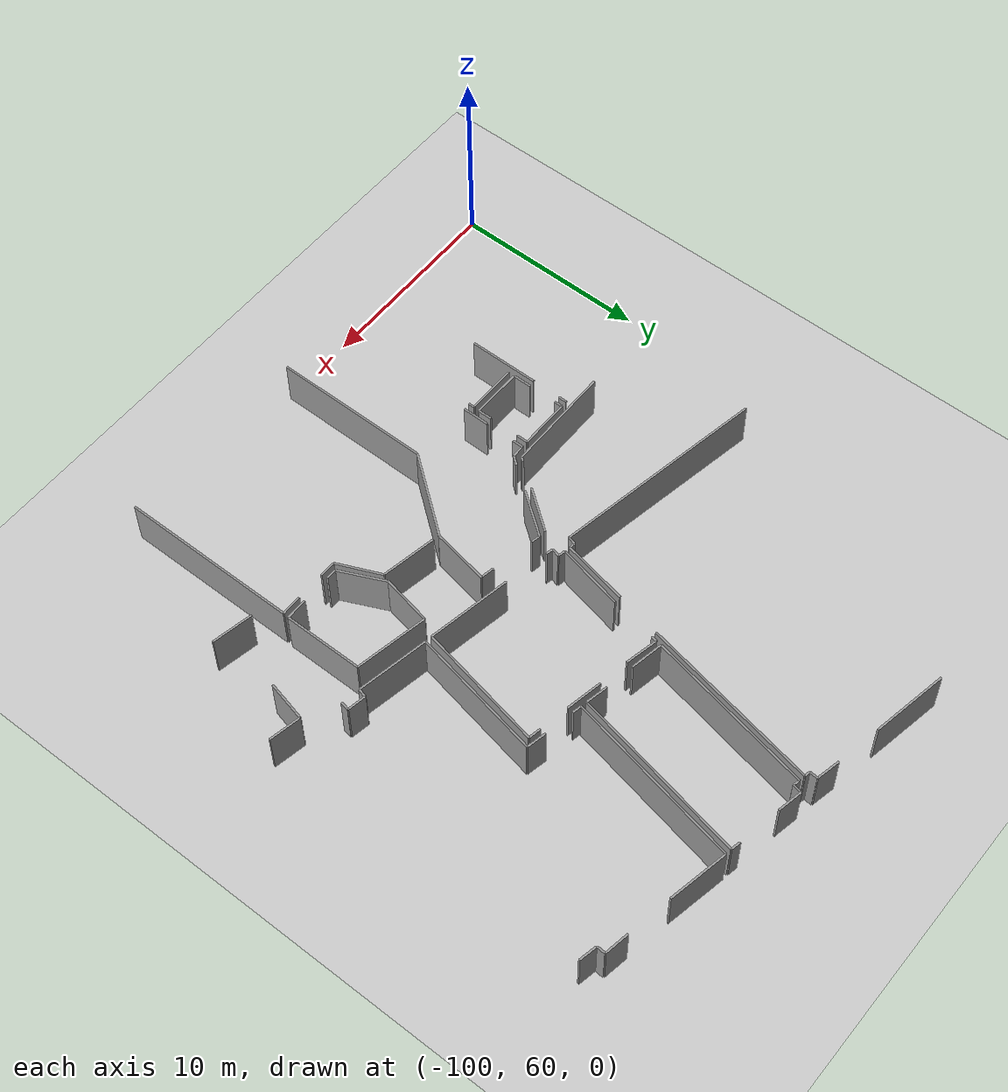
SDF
<sdf version="1.6">
 <world name="default">
  <model name="ground_plane">
   <static>1</static>
   <link name="link">
    <collision name="collision">
     <geometry><plane><normal>0 0 1</normal><size>100 100</size></plane></geometry>
     <surface><friction><ode><mu>100</mu><mu2>50</mu2></ode></friction></surface>
    </collision>
    <visual name="visual">
     <cast_shadows>0</cast_shadows>
     <geometry><plane><normal>0 0 1</normal><size>100 100</size></plane></geometry>
     <material>
      <script><uri>file://media/materials/scripts/gazebo.material</uri><name>Gazebo/Grey</name></script>
     </material>
    </visual>
   </link>
  </model>
  <model name="0510045922_A-40">
   <static>1</static>
   <link name="Wall_51">
    <collision name="Wall_51_Collision">
     <geometry><box><size>3.91748504924 0.1 2.5</size></box></geometry>
     <pose>1.95874252462 0 1.25 0 0 0</pose>
    </collision>
    <visual name="Wall_51_Visual">
     <pose>1.95874252462 0 1.25 0 0 0</pose>
     <geometry><box><size>3.91748504924 0.1 2.5</size></box></geometry>
     <material>
      <script><uri>file://media/materials/scripts/gazebo.material</uri><name>Gazebo/Grey</name></script>
      <ambient>1 1 1 1</ambient>
     </material>
    </visual>
    <pose>42.989438902 -7.71237211667 0 0 0 -0.190346074917</pose>
   </link>
   <link name="Wall_52">
    <collision name="Wall_52_Collision">
     <geometry><box><size>1.2144086014 0.1 2.5</size></box></geometry>
     <pose>0.607204300698 0 1.25 0 0 0</pose>
    </collision>
    <visual name="Wall_52_Visual">
     <pose>0.607204300698 0 1.25 0 0 0</pose>
     <geometry><box><size>1.2144086014 0.1 2.5</size></box></geometry>
     <material>
      <script><uri>file://media/materials/scripts/gazebo.material</uri><name>Gazebo/Grey</name></script>
      <ambient>1 1 1 1</ambient>
     </material>
    </visual>
    <pose>49.1306348097 -8.90700895978 0 0 0 -0.217715462542</pose>
   </link>
   <link name="Wall_53">
    <collision name="Wall_53_Collision">
     <geometry><box><size>0.423572146596 0.1 2.5</size></box></geometry>
     <pose>0.211786073298 0 1.25 0 0 0</pose>
    </collision>
    <visual name="Wall_53_Visual">
     <pose>0.211786073298 0 1.25 0 0 0</pose>
     <geometry><box><size>0.423572146596 0.1 2.5</size></box></geometry>
     <material>
      <script><uri>file://media/materials/scripts/gazebo.material</uri><name>Gazebo/Grey</name></script>
      <ambient>1 1 1 1</ambient>
     </material>
    </visual>
    <pose>50.316375421 -9.16932070916 0 0 0 -1.63504931029</pose>
   </link>
   <link name="Wall_54">
    <collision name="Wall_54_Collision">
     <geometry><box><size>0.291605153644 0.1 2.5</size></box></geometry>
     <pose>0.145802576822 0 1.25 0 0 0</pose>
    </collision>
    <visual name="Wall_54_Visual">
     <pose>0.145802576822 0 1.25 0 0 0</pose>
     <geometry><box><size>0.291605153644 0.1 2.5</size></box></geometry>
     <material>
      <script><uri>file://media/materials/scripts/gazebo.material</uri><name>Gazebo/Grey</name></script>
      <ambient>1 1 1 1</ambient>
     </material>
    </visual>
    <pose>50.2891783694 -9.59201880918 0 0 0 -0.214319914014</pose>
   </link>
   <link name="Wall_55">
    <collision name="Wall_55_Collision">
     <geometry><box><size>9.2602296968 0.1 2.5</size></box></geometry>
     <pose>4.6301148484 0 1.25 0 0 0</pose>
    </collision>
    <visual name="Wall_55_Visual">
     <pose>4.6301148484 0 1.25 0 0 0</pose>
     <geometry><box><size>9.2602296968 0.1 2.5</size></box></geometry>
     <material>
      <script><uri>file://media/materials/scripts/gazebo.material</uri><name>Gazebo/Grey</name></script>
      <ambient>1 1 1 1</ambient>
     </material>
    </visual>
    <pose>50.5741119654 -9.6540382538 0 0 0 -1.75793158499</pose>
   </link>
   <link name="Wall_56">
    <collision name="Wall_56_Collision">
     <geometry><box><size>3.40390601522 0.1 2.5</size></box></geometry>
     <pose>1.70195300761 0 1.25 0 0 0</pose>
    </collision>
    <visual name="Wall_56_Visual">
     <pose>1.70195300761 0 1.25 0 0 0</pose>
     <geometry><box><size>3.40390601522 0.1 2.5</size></box></geometry>
     <material>
      <script><uri>file://media/materials/scripts/gazebo.material</uri><name>Gazebo/Grey</name></script>
      <ambient>1 1 1 1</ambient>
     </material>
    </visual>
    <pose>48.380555379 -21.0806125691 0 0 0 -1.7661855922</pose>
   </link>
   <link name="Wall_57">
    <collision name="Wall_57_Collision">
     <geometry><box><size>0.297248924413 0.1 2.5</size></box></geometry>
     <pose>0.148624462206 0 1.25 0 0 0</pose>
    </collision>
    <visual name="Wall_57_Visual">
     <pose>0.148624462206 0 1.25 0 0 0</pose>
     <geometry><box><size>0.297248924413 0.1 2.5</size></box></geometry>
     <material>
      <script><uri>file://media/materials/scripts/gazebo.material</uri><name>Gazebo/Grey</name></script>
      <ambient>1 1 1 1</ambient>
     </material>
    </visual>
    <pose>47.7196924446 -24.4197496346 0 0 0 3.00779797338</pose>
   </link>
   <link name="Wall_58">
    <collision name="Wall_58_Collision">
     <geometry><box><size>0.412196636696 0.1 2.5</size></box></geometry>
     <pose>0.206098318348 0 1.25 0 0 0</pose>
    </collision>
    <visual name="Wall_58_Visual">
     <pose>0.206098318348 0 1.25 0 0 0</pose>
     <geometry><box><size>0.412196636696 0.1 2.5</size></box></geometry>
     <material>
      <script><uri>file://media/materials/scripts/gazebo.material</uri><name>Gazebo/Grey</name></script>
      <ambient>1 1 1 1</ambient>
     </material>
    </visual>
    <pose>47.4251000826 -24.3800978585 0 0 0 -1.82639379509</pose>
   </link>
   <link name="Wall_59">
    <collision name="Wall_59_Collision">
     <geometry><box><size>11.0264823709 0.1 2.5</size></box></geometry>
     <pose>5.51324118547 0 1.25 0 0 0</pose>
    </collision>
    <visual name="Wall_59_Visual">
     <pose>5.51324118547 0 1.25 0 0 0</pose>
     <geometry><box><size>11.0264823709 0.1 2.5</size></box></geometry>
     <material>
      <script><uri>file://media/materials/scripts/gazebo.material</uri><name>Gazebo/Grey</name></script>
      <ambient>1 1 1 1</ambient>
     </material>
    </visual>
    <pose>47.3208870814 -24.7789032217 0 0 0 2.95229391806</pose>
   </link>
   <link name="Wall_62">
    <collision name="Wall_62_Collision">
     <geometry><box><size>3.4575962859 0.1 2.5</size></box></geometry>
     <pose>1.72879814295 0 1.25 0 0 0</pose>
    </collision>
    <visual name="Wall_62_Visual">
     <pose>1.72879814295 0 1.25 0 0 0</pose>
     <geometry><box><size>3.4575962859 0.1 2.5</size></box></geometry>
     <material>
      <script><uri>file://media/materials/scripts/gazebo.material</uri><name>Gazebo/Grey</name></script>
      <ambient>1 1 1 1</ambient>
     </material>
    </visual>
    <pose>48.0033551503 -24.4769396963 0 0 0 1.36002132428</pose>
   </link>
   <link name="Wall_63">
    <collision name="Wall_63_Collision">
     <geometry><box><size>0.288522655639 0.1 2.5</size></box></geometry>
     <pose>0.144261327819 0 1.25 0 0 0</pose>
    </collision>
    <visual name="Wall_63_Visual">
     <pose>0.144261327819 0 1.25 0 0 0</pose>
     <geometry><box><size>0.288522655639 0.1 2.5</size></box></geometry>
     <material>
      <script><uri>file://media/materials/scripts/gazebo.material</uri><name>Gazebo/Grey</name></script>
      <ambient>1 1 1 1</ambient>
     </material>
    </visual>
    <pose>49.1415644659 -18.7670839423 0 0 0 1.37305522446</pose>
   </link>
   <link name="Wall_64">
    <collision name="Wall_64_Collision">
     <geometry><box><size>1.6994669576 0.1 2.5</size></box></geometry>
     <pose>0.849733478799 0 1.25 0 0 0</pose>
    </collision>
    <visual name="Wall_64_Visual">
     <pose>0.849733478799 0 1.25 0 0 0</pose>
     <geometry><box><size>1.6994669576 0.1 2.5</size></box></geometry>
     <material>
      <script><uri>file://media/materials/scripts/gazebo.material</uri><name>Gazebo/Grey</name></script>
      <ambient>1 1 1 1</ambient>
     </material>
    </visual>
    <pose>49.1982461714 -18.4841837707 0 0 0 -0.21998296293</pose>
   </link>
   <link name="Wall_65">
    <collision name="Wall_65_Collision">
     <geometry><box><size>1.86109094837 0.1 2.5</size></box></geometry>
     <pose>0.930545474187 0 1.25 0 0 0</pose>
    </collision>
    <visual name="Wall_65_Visual">
     <pose>0.930545474187 0 1.25 0 0 0</pose>
     <geometry><box><size>1.86109094837 0.1 2.5</size></box></geometry>
     <material>
      <script><uri>file://media/materials/scripts/gazebo.material</uri><name>Gazebo/Grey</name></script>
      <ambient>1 1 1 1</ambient>
     </material>
    </visual>
    <pose>52.3978394866 -19.1181038317 0 0 0 -0.19795803468</pose>
   </link>
   <link name="Wall_66">
    <collision name="Wall_66_Collision">
     <geometry><box><size>0.62810148145 0.1 2.5</size></box></geometry>
     <pose>0.314050740725 0 1.25 0 0 0</pose>
    </collision>
    <visual name="Wall_66_Visual">
     <pose>0.314050740725 0 1.25 0 0 0</pose>
     <geometry><box><size>0.62810148145 0.1 2.5</size></box></geometry>
     <material>
      <script><uri>file://media/materials/scripts/gazebo.material</uri><name>Gazebo/Grey</name></script>
      <ambient>1 1 1 1</ambient>
     </material>
    </visual>
    <pose>55.7677320963 -19.7764249857 0 0 0 -0.191363886965</pose>
   </link>
   <link name="Wall_67">
    <collision name="Wall_67_Collision">
     <geometry><box><size>6.56181159559 0.1 2.5</size></box></geometry>
     <pose>3.2809057978 0 1.25 0 0 0</pose>
    </collision>
    <visual name="Wall_67_Visual">
     <pose>3.2809057978 0 1.25 0 0 0</pose>
     <geometry><box><size>6.56181159559 0.1 2.5</size></box></geometry>
     <material>
      <script><uri>file://media/materials/scripts/gazebo.material</uri><name>Gazebo/Grey</name></script>
      <ambient>1 1 1 1</ambient>
     </material>
    </visual>
    <pose>56.3843680498 -19.89588867 0 0 0 -1.76227398683</pose>
   </link>
   <link name="Wall_68">
    <collision name="Wall_68_Collision">
     <geometry><box><size>4.31653995928 0.1 2.5</size></box></geometry>
     <pose>2.15826997964 0 1.25 0 0 0</pose>
    </collision>
    <visual name="Wall_68_Visual">
     <pose>2.15826997964 0 1.25 0 0 0</pose>
     <geometry><box><size>4.31653995928 0.1 2.5</size></box></geometry>
     <material>
      <script><uri>file://media/materials/scripts/gazebo.material</uri><name>Gazebo/Grey</name></script>
      <ambient>1 1 1 1</ambient>
     </material>
    </visual>
    <pose>55.1355912817 -26.3377772129 0 0 0 2.95418648301</pose>
   </link>
   <link name="Wall_69">
    <collision name="Wall_69_Collision">
     <geometry><box><size>0.380883923465 0.1 2.5</size></box></geometry>
     <pose>0.190441961732 0 1.25 0 0 0</pose>
    </collision>
    <visual name="Wall_69_Visual">
     <pose>0.190441961732 0 1.25 0 0 0</pose>
     <geometry><box><size>0.380883923465 0.1 2.5</size></box></geometry>
     <material>
      <script><uri>file://media/materials/scripts/gazebo.material</uri><name>Gazebo/Grey</name></script>
      <ambient>1 1 1 1</ambient>
     </material>
    </visual>
    <pose>48.6327000064 -25.0498570248 0 0 0 2.90859140408</pose>
   </link>
   <link name="Wall_70">
    <collision name="Wall_70_Collision">
     <geometry><box><size>0.41940803448 0.1 2.5</size></box></geometry>
     <pose>0.20970401724 0 1.25 0 0 0</pose>
    </collision>
    <visual name="Wall_70_Visual">
     <pose>0.20970401724 0 1.25 0 0 0</pose>
     <geometry><box><size>0.41940803448 0.1 2.5</size></box></geometry>
     <material>
      <script><uri>file://media/materials/scripts/gazebo.material</uri><name>Gazebo/Grey</name></script>
      <ambient>1 1 1 1</ambient>
     </material>
    </visual>
    <pose>48.2621084069 -24.9619114189 0 0 0 1.28259023196</pose>
   </link>
   <link name="Wall_71">
    <collision name="Wall_71_Collision">
     <geometry><box><size>0.386939231184 0.1 2.5</size></box></geometry>
     <pose>0.193469615592 0 1.25 0 0 0</pose>
    </collision>
    <visual name="Wall_71_Visual">
     <pose>0.193469615592 0 1.25 0 0 0</pose>
     <geometry><box><size>0.386939231184 0.1 2.5</size></box></geometry>
     <material>
      <script><uri>file://media/materials/scripts/gazebo.material</uri><name>Gazebo/Grey</name></script>
      <ambient>1 1 1 1</ambient>
     </material>
    </visual>
    <pose>48.3813179132 -24.5598017411 0 0 0 2.92577371781</pose>
   </link>
   <link name="Wall_72">
    <collision name="Wall_72_Collision">
     <geometry><box><size>8.65931794927 0.1 2.5</size></box></geometry>
     <pose>4.32965897464 0 1.25 0 0 0</pose>
    </collision>
    <visual name="Wall_72_Visual">
     <pose>4.32965897464 0 1.25 0 0 0</pose>
     <geometry><box><size>8.65931794927 0.1 2.5</size></box></geometry>
     <material>
      <script><uri>file://media/materials/scripts/gazebo.material</uri><name>Gazebo/Grey</name></script>
      <ambient>1 1 1 1</ambient>
     </material>
    </visual>
    <pose>49.2269682913 -18.1982334625 0 0 0 1.37819605115</pose>
   </link>
   <link name="Wall_73">
    <collision name="Wall_73_Collision">
     <geometry><box><size>0.344508040493 0.1 2.5</size></box></geometry>
     <pose>0.172254020247 0 1.25 0 0 0</pose>
    </collision>
    <visual name="Wall_73_Visual">
     <pose>0.172254020247 0 1.25 0 0 0</pose>
     <geometry><box><size>0.344508040493 0.1 2.5</size></box></geometry>
     <material>
      <script><uri>file://media/materials/scripts/gazebo.material</uri><name>Gazebo/Grey</name></script>
      <ambient>1 1 1 1</ambient>
     </material>
    </visual>
    <pose>50.8844633666 -9.69902776895 0 0 0 -0.256610207262</pose>
   </link>
   <link name="Wall_74">
    <collision name="Wall_74_Collision">
     <geometry><box><size>0.456317213447 0.1 2.5</size></box></geometry>
     <pose>0.228158606724 0 1.25 0 0 0</pose>
    </collision>
    <visual name="Wall_74_Visual">
     <pose>0.228158606724 0 1.25 0 0 0</pose>
     <geometry><box><size>0.456317213447 0.1 2.5</size></box></geometry>
     <material>
      <script><uri>file://media/materials/scripts/gazebo.material</uri><name>Gazebo/Grey</name></script>
      <ambient>1 1 1 1</ambient>
     </material>
    </visual>
    <pose>51.2176907924 -9.78646501875 0 0 0 1.37798889293</pose>
   </link>
   <link name="Wall_75">
    <collision name="Wall_75_Collision">
     <geometry><box><size>1.2771323861 0.1 2.5</size></box></geometry>
     <pose>0.638566193051 0 1.25 0 0 0</pose>
    </collision>
    <visual name="Wall_75_Visual">
     <pose>0.638566193051 0 1.25 0 0 0</pose>
     <geometry><box><size>1.2771323861 0.1 2.5</size></box></geometry>
     <material>
      <script><uri>file://media/materials/scripts/gazebo.material</uri><name>Gazebo/Grey</name></script>
      <ambient>1 1 1 1</ambient>
     </material>
    </visual>
    <pose>51.3051280422 -9.33860329161 0 0 0 -0.202391615081</pose>
   </link>
   <link name="Wall_76">
    <collision name="Wall_76_Collision">
     <geometry><box><size>0.505325017039 0.1 2.5</size></box></geometry>
     <pose>0.252662508519 0 1.25 0 0 0</pose>
    </collision>
    <visual name="Wall_76_Visual">
     <pose>0.252662508519 0 1.25 0 0 0</pose>
     <geometry><box><size>0.505325017039 0.1 2.5</size></box></geometry>
     <material>
      <script><uri>file://media/materials/scripts/gazebo.material</uri><name>Gazebo/Grey</name></script>
      <ambient>1 1 1 1</ambient>
     </material>
    </visual>
    <pose>54.7578826968 -10.0050581432 0 0 0 -0.222651684377</pose>
   </link>
   <link name="Wall_77">
    <collision name="Wall_77_Collision">
     <geometry><box><size>9.07886662079 0.1 2.5</size></box></geometry>
     <pose>4.53943331039 0 1.25 0 0 0</pose>
    </collision>
    <visual name="Wall_77_Visual">
     <pose>4.53943331039 0 1.25 0 0 0</pose>
     <geometry><box><size>9.07886662079 0.1 2.5</size></box></geometry>
     <material>
      <script><uri>file://media/materials/scripts/gazebo.material</uri><name>Gazebo/Grey</name></script>
      <ambient>1 1 1 1</ambient>
     </material>
    </visual>
    <pose>55.2507339391 -10.1166423079 0 0 0 -1.76588034235</pose>
   </link>
   <link name="Wall_78">
    <collision name="Wall_78_Collision">
     <geometry><box><size>1.14588094732 0.1 2.5</size></box></geometry>
     <pose>0.57294047366 0 1.25 0 0 0</pose>
    </collision>
    <visual name="Wall_78_Visual">
     <pose>0.57294047366 0 1.25 0 0 0</pose>
     <geometry><box><size>1.14588094732 0.1 2.5</size></box></geometry>
     <material>
      <script><uri>file://media/materials/scripts/gazebo.material</uri><name>Gazebo/Grey</name></script>
      <ambient>1 1 1 1</ambient>
     </material>
    </visual>
    <pose>53.490805109 -19.0232954184 0 0 0 2.9272303962</pose>
   </link>
   <link name="Wall_79">
    <collision name="Wall_79_Collision">
     <geometry><box><size>1.68446587093 0.1 2.5</size></box></geometry>
     <pose>0.842232935467 0 1.25 0 0 0</pose>
    </collision>
    <visual name="Wall_79_Visual">
     <pose>0.842232935467 0 1.25 0 0 0</pose>
     <geometry><box><size>1.68446587093 0.1 2.5</size></box></geometry>
     <material>
      <script><uri>file://media/materials/scripts/gazebo.material</uri><name>Gazebo/Grey</name></script>
      <ambient>1 1 1 1</ambient>
     </material>
    </visual>
    <pose>50.8809048739 -18.5174810955 0 0 0 2.95091475777</pose>
   </link>
   <link name="Wall_80">
    <collision name="Wall_80_Collision">
     <geometry><box><size>9.09158760353 0.1 2.5</size></box></geometry>
     <pose>4.54579380177 0 1.25 0 0 0</pose>
    </collision>
    <visual name="Wall_80_Visual">
     <pose>4.54579380177 0 1.25 0 0 0</pose>
     <geometry><box><size>9.09158760353 0.1 2.5</size></box></geometry>
     <material>
      <script><uri>file://media/materials/scripts/gazebo.material</uri><name>Gazebo/Grey</name></script>
      <ambient>1 1 1 1</ambient>
     </material>
    </visual>
    <pose>53.7978521955 -19.0792145898 0 0 0 1.37613126283</pose>
   </link>
   <link name="Wall_81">
    <collision name="Wall_81_Collision">
     <geometry><box><size>3.09154184488 0.1 2.5</size></box></geometry>
     <pose>1.54577092244 0 1.25 0 0 0</pose>
    </collision>
    <visual name="Wall_81_Visual">
     <pose>1.54577092244 0 1.25 0 0 0</pose>
     <geometry><box><size>3.09154184488 0.1 2.5</size></box></geometry>
     <material>
      <script><uri>file://media/materials/scripts/gazebo.material</uri><name>Gazebo/Grey</name></script>
      <ambient>1 1 1 1</ambient>
     </material>
    </visual>
    <pose>55.5565101353 -10.1593442206 0 0 0 -0.20265204986</pose>
   </link>
   <link name="Wall_82">
    <collision name="Wall_82_Collision">
     <geometry><box><size>1.24298514589 0.1 2.5</size></box></geometry>
     <pose>0.621492572947 0 1.25 0 0 0</pose>
    </collision>
    <visual name="Wall_82_Visual">
     <pose>0.621492572947 0 1.25 0 0 0</pose>
     <geometry><box><size>1.24298514589 0.1 2.5</size></box></geometry>
     <material>
      <script><uri>file://media/materials/scripts/gazebo.material</uri><name>Gazebo/Grey</name></script>
      <ambient>1 1 1 1</ambient>
     </material>
    </visual>
    <pose>60.8934866874 -11.2070661498 0 0 0 -0.176780750931</pose>
   </link>
   <link name="Wall_83">
    <collision name="Wall_83_Collision">
     <geometry><box><size>0.447656548932 0.1 2.5</size></box></geometry>
     <pose>0.223828274466 0 1.25 0 0 0</pose>
    </collision>
    <visual name="Wall_83_Visual">
     <pose>0.223828274466 0 1.25 0 0 0</pose>
     <geometry><box><size>0.447656548932 0.1 2.5</size></box></geometry>
     <material>
      <script><uri>file://media/materials/scripts/gazebo.material</uri><name>Gazebo/Grey</name></script>
      <ambient>1 1 1 1</ambient>
     </material>
    </visual>
    <pose>62.1170998284 -11.4256592743 0 0 0 -1.63101920634</pose>
   </link>
   <link name="Wall_84">
    <collision name="Wall_84_Collision">
     <geometry><box><size>0.943000606156 0.1 2.5</size></box></geometry>
     <pose>0.471500303078 0 1.25 0 0 0</pose>
    </collision>
    <visual name="Wall_84_Visual">
     <pose>0.471500303078 0 1.25 0 0 0</pose>
     <geometry><box><size>0.943000606156 0.1 2.5</size></box></geometry>
     <material>
      <script><uri>file://media/materials/scripts/gazebo.material</uri><name>Gazebo/Grey</name></script>
      <ambient>1 1 1 1</ambient>
     </material>
    </visual>
    <pose>62.0901569549 -11.8725042893 0 0 0 -0.213201803526</pose>
   </link>
   <link name="Wall_101">
    <collision name="Wall_101_Collision">
     <geometry><box><size>0.454683614149 0.1 2.5</size></box></geometry>
     <pose>0.227341807075 0 1.25 0 0 0</pose>
    </collision>
    <visual name="Wall_101_Visual">
     <pose>0.227341807075 0 1.25 0 0 0</pose>
     <geometry><box><size>0.454683614149 0.1 2.5</size></box></geometry>
     <material>
      <script><uri>file://media/materials/scripts/gazebo.material</uri><name>Gazebo/Grey</name></script>
      <ambient>1 1 1 1</ambient>
     </material>
    </visual>
    <pose>60.0615619241 -27.2792527165 0 0 0 1.3818426232</pose>
   </link>
   <link name="Wall_102">
    <collision name="Wall_102_Collision">
     <geometry><box><size>0.945822248485 0.1 2.5</size></box></geometry>
     <pose>0.472911124243 0 1.25 0 0 0</pose>
    </collision>
    <visual name="Wall_102_Visual">
     <pose>0.472911124243 0 1.25 0 0 0</pose>
     <geometry><box><size>0.945822248485 0.1 2.5</size></box></geometry>
     <material>
      <script><uri>file://media/materials/scripts/gazebo.material</uri><name>Gazebo/Grey</name></script>
      <ambient>1 1 1 1</ambient>
     </material>
    </visual>
    <pose>60.1469657495 -26.8326618796 0 0 0 2.9646475897</pose>
   </link>
   <link name="Wall_103">
    <collision name="Wall_103_Collision">
     <geometry><box><size>0.4368459317 0.1 2.5</size></box></geometry>
     <pose>0.21842296585 0 1.25 0 0 0</pose>
    </collision>
    <visual name="Wall_103_Visual">
     <pose>0.21842296585 0 1.25 0 0 0</pose>
     <geometry><box><size>0.4368459317 0.1 2.5</size></box></geometry>
     <material>
      <script><uri>file://media/materials/scripts/gazebo.material</uri><name>Gazebo/Grey</name></script>
      <ambient>1 1 1 1</ambient>
     </material>
    </visual>
    <pose>59.215911546 -26.6661752558 0 0 0 -1.82367773254</pose>
   </link>
   <link name="Wall_104">
    <collision name="Wall_104_Collision">
     <geometry><box><size>3.68449048973 0.1 2.5</size></box></geometry>
     <pose>1.84224524487 0 1.25 0 0 0</pose>
    </collision>
    <visual name="Wall_104_Visual">
     <pose>1.84224524487 0 1.25 0 0 0</pose>
     <geometry><box><size>3.68449048973 0.1 2.5</size></box></geometry>
     <material>
      <script><uri>file://media/materials/scripts/gazebo.material</uri><name>Gazebo/Grey</name></script>
      <ambient>1 1 1 1</ambient>
     </material>
    </visual>
    <pose>59.1066149838 -27.0891275338 0 0 0 2.94910823361</pose>
   </link>
   <link name="Wall_105">
    <collision name="Wall_105_Collision">
     <geometry><box><size>6.83020783622 0.1 2.5</size></box></geometry>
     <pose>3.41510391811 0 1.25 0 0 0</pose>
    </collision>
    <visual name="Wall_105_Visual">
     <pose>3.41510391811 0 1.25 0 0 0</pose>
     <geometry><box><size>6.83020783622 0.1 2.5</size></box></geometry>
     <material>
      <script><uri>file://media/materials/scripts/gazebo.material</uri><name>Gazebo/Grey</name></script>
      <ambient>1 1 1 1</ambient>
     </material>
    </visual>
    <pose>55.4901696638 -26.3842917964 0 0 0 1.38155297842</pose>
   </link>
   <link name="Wall_106">
    <collision name="Wall_106_Collision">
     <geometry><box><size>1.02249464503 0.1 2.5</size></box></geometry>
     <pose>0.511247322515 0 1.25 0 0 0</pose>
    </collision>
    <visual name="Wall_106_Visual">
     <pose>0.511247322515 0 1.25 0 0 0</pose>
     <geometry><box><size>1.02249464503 0.1 2.5</size></box></geometry>
     <material>
      <script><uri>file://media/materials/scripts/gazebo.material</uri><name>Gazebo/Grey</name></script>
      <ambient>1 1 1 1</ambient>
     </material>
    </visual>
    <pose>56.7750397153 -19.6760246553 0 0 0 2.92996109794</pose>
   </link>
   <link name="Wall_107">
    <collision name="Wall_107_Collision">
     <geometry><box><size>0.473514677326 0.1 2.5</size></box></geometry>
     <pose>0.236757338663 0 1.25 0 0 0</pose>
    </collision>
    <visual name="Wall_107_Visual">
     <pose>0.236757338663 0 1.25 0 0 0</pose>
     <geometry><box><size>0.473514677326 0.1 2.5</size></box></geometry>
     <material>
      <script><uri>file://media/materials/scripts/gazebo.material</uri><name>Gazebo/Grey</name></script>
      <ambient>1 1 1 1</ambient>
     </material>
    </visual>
    <pose>54.2607104277 -19.1791065641 0 0 0 2.92903716867</pose>
   </link>
   <link name="Wall_423">
    <collision name="Wall_423_Collision">
     <geometry><box><size>2.84698991239 0.1 2.5</size></box></geometry>
     <pose>1.42349495619 0 1.25 0 0 0</pose>
    </collision>
    <visual name="Wall_423_Visual">
     <pose>1.42349495619 0 1.25 0 0 0</pose>
     <geometry><box><size>2.84698991239 0.1 2.5</size></box></geometry>
     <material>
      <script><uri>file://media/materials/scripts/gazebo.material</uri><name>Gazebo/Grey</name></script>
      <ambient>1 1 1 1</ambient>
     </material>
    </visual>
    <pose>51.19583148 -29.5094109424 0 0 0 -0.187240069382</pose>
   </link>
   <link name="Wall_424">
    <collision name="Wall_424_Collision">
     <geometry><box><size>2.36594645933 0.1 2.5</size></box></geometry>
     <pose>1.18297322967 0 1.25 0 0 0</pose>
    </collision>
    <visual name="Wall_424_Visual">
     <pose>1.18297322967 0 1.25 0 0 0</pose>
     <geometry><box><size>2.36594645933 0.1 2.5</size></box></geometry>
     <material>
      <script><uri>file://media/materials/scripts/gazebo.material</uri><name>Gazebo/Grey</name></script>
      <ambient>1 1 1 1</ambient>
     </material>
    </visual>
    <pose>53.9930609392 -30.0393721802 0 0 0 -1.15978228318</pose>
   </link>
   <link name="Wall_425">
    <collision name="Wall_425_Collision">
     <geometry><box><size>0.824807777848 0.1 2.5</size></box></geometry>
     <pose>0.412403888924 0 1.25 0 0 0</pose>
    </collision>
    <visual name="Wall_425_Visual">
     <pose>0.412403888924 0 1.25 0 0 0</pose>
     <geometry><box><size>0.824807777848 0.1 2.5</size></box></geometry>
     <material>
      <script><uri>file://media/materials/scripts/gazebo.material</uri><name>Gazebo/Grey</name></script>
      <ambient>1 1 1 1</ambient>
     </material>
    </visual>
    <pose>54.9383491136 -32.2082734956 0 0 0 0.0</pose>
   </link>
   <link name="Wall_426">
    <collision name="Wall_426_Collision">
     <geometry><box><size>1.02738768507 0.1 2.5</size></box></geometry>
     <pose>0.513693842537 0 1.25 0 0 0</pose>
    </collision>
    <visual name="Wall_426_Visual">
     <pose>0.513693842537 0 1.25 0 0 0</pose>
     <geometry><box><size>1.02738768507 0.1 2.5</size></box></geometry>
     <material>
      <script><uri>file://media/materials/scripts/gazebo.material</uri><name>Gazebo/Grey</name></script>
      <ambient>1 1 1 1</ambient>
     </material>
    </visual>
    <pose>57.2498443159 -32.2082734956 0 0 0 0.0</pose>
   </link>
   <link name="Wall_427">
    <collision name="Wall_427_Collision">
     <geometry><box><size>9.05560144881 0.1 2.5</size></box></geometry>
     <pose>4.52780072441 0 1.25 0 0 0</pose>
    </collision>
    <visual name="Wall_427_Visual">
     <pose>4.52780072441 0 1.25 0 0 0</pose>
     <geometry><box><size>9.05560144881 0.1 2.5</size></box></geometry>
     <material>
      <script><uri>file://media/materials/scripts/gazebo.material</uri><name>Gazebo/Grey</name></script>
      <ambient>1 1 1 1</ambient>
     </material>
    </visual>
    <pose>58.277232001 -32.2082734956 0 0 0 -1.57079632679</pose>
   </link>
   <link name="Wall_430">
    <collision name="Wall_430_Collision">
     <geometry><box><size>2.56452554492 0.1 2.5</size></box></geometry>
     <pose>1.28226277246 0 1.25 0 0 0</pose>
    </collision>
    <visual name="Wall_430_Visual">
     <pose>1.28226277246 0 1.25 0 0 0</pose>
     <geometry><box><size>2.56452554492 0.1 2.5</size></box></geometry>
     <material>
      <script><uri>file://media/materials/scripts/gazebo.material</uri><name>Gazebo/Grey</name></script>
      <ambient>1 1 1 1</ambient>
     </material>
    </visual>
    <pose>54.14429688 -29.6624261295 0 0 0 1.37771594445</pose>
   </link>
   <link name="Wall_431">
    <collision name="Wall_431_Collision">
     <geometry><box><size>3.74282027347 0.1 2.5</size></box></geometry>
     <pose>1.87141013674 0 1.25 0 0 0</pose>
    </collision>
    <visual name="Wall_431_Visual">
     <pose>1.87141013674 0 1.25 0 0 0</pose>
     <geometry><box><size>3.74282027347 0.1 2.5</size></box></geometry>
     <material>
      <script><uri>file://media/materials/scripts/gazebo.material</uri><name>Gazebo/Grey</name></script>
      <ambient>1 1 1 1</ambient>
     </material>
    </visual>
    <pose>54.6363855881 -27.1455550613 0 0 0 -0.196436634141</pose>
   </link>
   <link name="Wall_432">
    <collision name="Wall_432_Collision">
     <geometry><box><size>4.0299930101 0.1 2.5</size></box></geometry>
     <pose>2.01499650505 0 1.25 0 0 0</pose>
    </collision>
    <visual name="Wall_432_Visual">
     <pose>2.01499650505 0 1.25 0 0 0</pose>
     <geometry><box><size>4.0299930101 0.1 2.5</size></box></geometry>
     <material>
      <script><uri>file://media/materials/scripts/gazebo.material</uri><name>Gazebo/Grey</name></script>
      <ambient>1 1 1 1</ambient>
     </material>
    </visual>
    <pose>58.3072250111 -27.876062782 0 0 0 -1.57079632679</pose>
   </link>
   <link name="Wall_433">
    <collision name="Wall_433_Collision">
     <geometry><box><size>1.08864459554 0.1 2.5</size></box></geometry>
     <pose>0.54432229777 0 1.25 0 0 0</pose>
    </collision>
    <visual name="Wall_433_Visual">
     <pose>0.54432229777 0 1.25 0 0 0</pose>
     <geometry><box><size>1.08864459554 0.1 2.5</size></box></geometry>
     <material>
      <script><uri>file://media/materials/scripts/gazebo.material</uri><name>Gazebo/Grey</name></script>
      <ambient>1 1 1 1</ambient>
     </material>
    </visual>
    <pose>58.3072250111 -31.9060557921 0 0 0 3.14159265359</pose>
   </link>
   <link name="Wall_434">
    <collision name="Wall_434_Collision">
     <geometry><box><size>0.539874181864 0.1 2.5</size></box></geometry>
     <pose>0.269937090932 0 1.25 0 0 0</pose>
    </collision>
    <visual name="Wall_434_Visual">
     <pose>0.269937090932 0 1.25 0 0 0</pose>
     <geometry><box><size>0.539874181864 0.1 2.5</size></box></geometry>
     <material>
      <script><uri>file://media/materials/scripts/gazebo.material</uri><name>Gazebo/Grey</name></script>
      <ambient>1 1 1 1</ambient>
     </material>
    </visual>
    <pose>55.7146088835 -31.9060557921 0 0 0 3.14159265359</pose>
   </link>
   <link name="Wall_435">
    <collision name="Wall_435_Collision">
     <geometry><box><size>2.46894231751 0.1 2.5</size></box></geometry>
     <pose>1.23447115875 0 1.25 0 0 0</pose>
    </collision>
    <visual name="Wall_435_Visual">
     <pose>1.23447115875 0 1.25 0 0 0</pose>
     <geometry><box><size>2.46894231751 0.1 2.5</size></box></geometry>
     <material>
      <script><uri>file://media/materials/scripts/gazebo.material</uri><name>Gazebo/Grey</name></script>
      <ambient>1 1 1 1</ambient>
     </material>
    </visual>
    <pose>55.1747347017 -31.9060557921 0 0 0 2.00133460967</pose>
   </link>
   <link name="Wall_448">
    <collision name="Wall_448_Collision">
     <geometry><box><size>2.59668297642 0.1 2.5</size></box></geometry>
     <pose>1.29834148821 0 1.25 0 0 0</pose>
    </collision>
    <visual name="Wall_448_Visual">
     <pose>1.29834148821 0 1.25 0 0 0</pose>
     <geometry><box><size>2.59668297642 0.1 2.5</size></box></geometry>
     <material>
      <script><uri>file://media/materials/scripts/gazebo.material</uri><name>Gazebo/Grey</name></script>
      <ambient>1 1 1 1</ambient>
     </material>
    </visual>
    <pose>41.7493041876 -32.7219673381 0 0 0 0.0</pose>
   </link>
   <link name="Wall_449">
    <collision name="Wall_449_Collision">
     <geometry><box><size>0.305522018174 0.1 2.5</size></box></geometry>
     <pose>0.152761009087 0 1.25 0 0 0</pose>
    </collision>
    <visual name="Wall_449_Visual">
     <pose>0.152761009087 0 1.25 0 0 0</pose>
     <geometry><box><size>0.305522018174 0.1 2.5</size></box></geometry>
     <material>
      <script><uri>file://media/materials/scripts/gazebo.material</uri><name>Gazebo/Grey</name></script>
      <ambient>1 1 1 1</ambient>
     </material>
    </visual>
    <pose>44.345987164 -32.7219673381 0 0 0 -1.57079632679</pose>
   </link>
   <link name="Wall_455">
    <collision name="Wall_455_Collision">
     <geometry><box><size>0.437694605071 0.1 2.5</size></box></geometry>
     <pose>0.218847302535 0 1.25 0 0 0</pose>
    </collision>
    <visual name="Wall_455_Visual">
     <pose>0.218847302535 0 1.25 0 0 0</pose>
     <geometry><box><size>0.437694605071 0.1 2.5</size></box></geometry>
     <material>
      <script><uri>file://media/materials/scripts/gazebo.material</uri><name>Gazebo/Grey</name></script>
      <ambient>1 1 1 1</ambient>
     </material>
    </visual>
    <pose>41.4196352545 -29.5350829256 0 0 0 -1.57079632679</pose>
   </link>
   <link name="Wall_456">
    <collision name="Wall_456_Collision">
     <geometry><box><size>3.62712079812 0.1 2.5</size></box></geometry>
     <pose>1.81356039906 0 1.25 0 0 0</pose>
    </collision>
    <visual name="Wall_456_Visual">
     <pose>1.81356039906 0 1.25 0 0 0</pose>
     <geometry><box><size>3.62712079812 0.1 2.5</size></box></geometry>
     <material>
      <script><uri>file://media/materials/scripts/gazebo.material</uri><name>Gazebo/Grey</name></script>
      <ambient>1 1 1 1</ambient>
     </material>
    </visual>
    <pose>41.4196352545 -31.4744614603 0 0 0 -1.57079632679</pose>
   </link>
   <link name="Wall_458">
    <collision name="Wall_458_Collision">
     <geometry><box><size>0.954946940332 0.1 2.5</size></box></geometry>
     <pose>0.477473470166 0 1.25 0 0 0</pose>
    </collision>
    <visual name="Wall_458_Visual">
     <pose>0.477473470166 0 1.25 0 0 0</pose>
     <geometry><box><size>0.954946940332 0.1 2.5</size></box></geometry>
     <material>
      <script><uri>file://media/materials/scripts/gazebo.material</uri><name>Gazebo/Grey</name></script>
      <ambient>1 1 1 1</ambient>
     </material>
    </visual>
    <pose>41.7521001462 -32.3910275148 0 0 0 1.57079632679</pose>
   </link>
   <link name="Wall_459">
    <collision name="Wall_459_Collision">
     <geometry><box><size>0.409480841329 0.1 2.5</size></box></geometry>
     <pose>0.204740420665 0 1.25 0 0 0</pose>
    </collision>
    <visual name="Wall_459_Visual">
     <pose>0.204740420665 0 1.25 0 0 0</pose>
     <geometry><box><size>0.409480841329 0.1 2.5</size></box></geometry>
     <material>
      <script><uri>file://media/materials/scripts/gazebo.material</uri><name>Gazebo/Grey</name></script>
      <ambient>1 1 1 1</ambient>
     </material>
    </visual>
    <pose>41.7521001462 -29.9481222596 0 0 0 1.57079632679</pose>
   </link>
   <link name="Wall_460">
    <collision name="Wall_460_Collision">
     <geometry><box><size>2.61600050836 0.1 2.5</size></box></geometry>
     <pose>1.30800025418 0 1.25 0 0 0</pose>
    </collision>
    <visual name="Wall_460_Visual">
     <pose>1.30800025418 0 1.25 0 0 0</pose>
     <geometry><box><size>2.61600050836 0.1 2.5</size></box></geometry>
     <material>
      <script><uri>file://media/materials/scripts/gazebo.material</uri><name>Gazebo/Grey</name></script>
      <ambient>1 1 1 1</ambient>
     </material>
    </visual>
    <pose>41.7521001462 -29.5386414183 0 0 0 0.0</pose>
   </link>
   <link name="Wall_461">
    <collision name="Wall_461_Collision">
     <geometry><box><size>0.592743216623 0.1 2.5</size></box></geometry>
     <pose>0.296371608312 0 1.25 0 0 0</pose>
    </collision>
    <visual name="Wall_461_Visual">
     <pose>0.296371608312 0 1.25 0 0 0</pose>
     <geometry><box><size>0.592743216623 0.1 2.5</size></box></geometry>
     <material>
      <script><uri>file://media/materials/scripts/gazebo.material</uri><name>Gazebo/Grey</name></script>
      <ambient>1 1 1 1</ambient>
     </material>
    </visual>
    <pose>44.3681006545 -29.5386414183 0 0 0 -1.57079632679</pose>
   </link>
   <link name="Wall_462">
    <collision name="Wall_462_Collision">
     <geometry><box><size>0.707887014889 0.1 2.5</size></box></geometry>
     <pose>0.353943507444 0 1.25 0 0 0</pose>
    </collision>
    <visual name="Wall_462_Visual">
     <pose>0.353943507444 0 1.25 0 0 0</pose>
     <geometry><box><size>0.707887014889 0.1 2.5</size></box></geometry>
     <material>
      <script><uri>file://media/materials/scripts/gazebo.material</uri><name>Gazebo/Grey</name></script>
      <ambient>1 1 1 1</ambient>
     </material>
    </visual>
    <pose>44.3681006545 -31.6961047214 0 0 0 -1.56900099659</pose>
   </link>
   <link name="Wall_463">
    <collision name="Wall_463_Collision">
     <geometry><box><size>2.61730350083 0.1 2.5</size></box></geometry>
     <pose>1.30865175042 0 1.25 0 0 0</pose>
    </collision>
    <visual name="Wall_463_Visual">
     <pose>1.30865175042 0 1.25 0 0 0</pose>
     <geometry><box><size>2.61730350083 0.1 2.5</size></box></geometry>
     <material>
      <script><uri>file://media/materials/scripts/gazebo.material</uri><name>Gazebo/Grey</name></script>
      <ambient>1 1 1 1</ambient>
     </material>
    </visual>
    <pose>44.3693715448 -32.4039905954 0 0 0 3.13663979519</pose>
   </link>
   <link name="Wall_466">
    <collision name="Wall_466_Collision">
     <geometry><box><size>2.44866139433 0.1 2.5</size></box></geometry>
     <pose>1.22433069717 0 1.25 0 0 0</pose>
    </collision>
    <visual name="Wall_466_Visual">
     <pose>1.22433069717 0 1.25 0 0 0</pose>
     <geometry><box><size>2.44866139433 0.1 2.5</size></box></geometry>
     <material>
      <script><uri>file://media/materials/scripts/gazebo.material</uri><name>Gazebo/Grey</name></script>
      <ambient>1 1 1 1</ambient>
     </material>
    </visual>
    <pose>47.7374849082 -25.827133507 0 0 0 -2.2173907657</pose>
   </link>
   <link name="Wall_467">
    <collision name="Wall_467_Collision">
     <geometry><box><size>0.245331728558 0.1 2.5</size></box></geometry>
     <pose>0.122665864279 0 1.25 0 0 0</pose>
    </collision>
    <visual name="Wall_467_Visual">
     <pose>0.122665864279 0 1.25 0 0 0</pose>
     <geometry><box><size>0.245331728558 0.1 2.5</size></box></geometry>
     <material>
      <script><uri>file://media/materials/scripts/gazebo.material</uri><name>Gazebo/Grey</name></script>
      <ambient>1 1 1 1</ambient>
     </material>
    </visual>
    <pose>45.3405858804 -29.0145262757 0 0 0 -2.25492210675</pose>
   </link>
   <link name="Wall_468">
    <collision name="Wall_468_Collision">
     <geometry><box><size>5.51748138167 0.1 2.5</size></box></geometry>
     <pose>2.75874069084 0 1.25 0 0 0</pose>
    </collision>
    <visual name="Wall_468_Visual">
     <pose>2.75874069084 0 1.25 0 0 0</pose>
     <geometry><box><size>5.51748138167 0.1 2.5</size></box></geometry>
     <material>
      <script><uri>file://media/materials/scripts/gazebo.material</uri><name>Gazebo/Grey</name></script>
      <ambient>1 1 1 1</ambient>
     </material>
    </visual>
    <pose>45.1855372689 -29.2046514583 0 0 0 -3.13786115573</pose>
   </link>
   <link name="Wall_498">
    <collision name="Wall_498_Collision">
     <geometry><box><size>1.36798627439 0.1 2.5</size></box></geometry>
     <pose>0.683993137193 0 1.25 0 0 0</pose>
    </collision>
    <visual name="Wall_498_Visual">
     <pose>0.683993137193 0 1.25 0 0 0</pose>
     <geometry><box><size>1.36798627439 0.1 2.5</size></box></geometry>
     <material>
      <script><uri>file://media/materials/scripts/gazebo.material</uri><name>Gazebo/Grey</name></script>
      <ambient>1 1 1 1</ambient>
     </material>
    </visual>
    <pose>44.7107326682 -32.9987672364 0 0 0 1.57079632679</pose>
   </link>
   <link name="Wall_499">
    <collision name="Wall_499_Collision">
     <geometry><box><size>0.565546165089 0.1 2.5</size></box></geometry>
     <pose>0.282773082544 0 1.25 0 0 0</pose>
    </collision>
    <visual name="Wall_499_Visual">
     <pose>0.282773082544 0 1.25 0 0 0</pose>
     <geometry><box><size>0.565546165089 0.1 2.5</size></box></geometry>
     <material>
      <script><uri>file://media/materials/scripts/gazebo.material</uri><name>Gazebo/Grey</name></script>
      <ambient>1 1 1 1</ambient>
     </material>
    </visual>
    <pose>44.7107326682 -30.0950371735 0 0 0 1.57079632679</pose>
   </link>
   <link name="Wall_500">
    <collision name="Wall_500_Collision">
     <geometry><box><size>0.64230793671 0.1 2.5</size></box></geometry>
     <pose>0.321153968355 0 1.25 0 0 0</pose>
    </collision>
    <visual name="Wall_500_Visual">
     <pose>0.321153968355 0 1.25 0 0 0</pose>
     <geometry><box><size>0.64230793671 0.1 2.5</size></box></geometry>
     <material>
      <script><uri>file://media/materials/scripts/gazebo.material</uri><name>Gazebo/Grey</name></script>
      <ambient>1 1 1 1</ambient>
     </material>
    </visual>
    <pose>44.7107326682 -29.5294910085 0 0 0 0.0</pose>
   </link>
   <link name="Wall_501">
    <collision name="Wall_501_Collision">
     <geometry><box><size>0.518046360097 0.1 2.5</size></box></geometry>
     <pose>0.259023180048 0 1.25 0 0 0</pose>
    </collision>
    <visual name="Wall_501_Visual">
     <pose>0.259023180048 0 1.25 0 0 0</pose>
     <geometry><box><size>0.518046360097 0.1 2.5</size></box></geometry>
     <material>
      <script><uri>file://media/materials/scripts/gazebo.material</uri><name>Gazebo/Grey</name></script>
      <ambient>1 1 1 1</ambient>
     </material>
    </visual>
    <pose>45.3530406049 -29.5294910085 0 0 0 0.888622571262</pose>
   </link>
   <link name="Wall_502">
    <collision name="Wall_502_Collision">
     <geometry><box><size>2.57252404447 0.1 2.5</size></box></geometry>
     <pose>1.28626202223 0 1.25 0 0 0</pose>
    </collision>
    <visual name="Wall_502_Visual">
     <pose>1.28626202223 0 1.25 0 0 0</pose>
     <geometry><box><size>2.57252404447 0.1 2.5</size></box></geometry>
     <material>
      <script><uri>file://media/materials/scripts/gazebo.material</uri><name>Gazebo/Grey</name></script>
      <ambient>1 1 1 1</ambient>
     </material>
    </visual>
    <pose>46.5580987482 -27.9258816801 0 0 0 0.932788799603</pose>
   </link>
   <link name="Wall_503">
    <collision name="Wall_503_Collision">
     <geometry><box><size>0.473287790979 0.1 2.5</size></box></geometry>
     <pose>0.23664389549 0 1.25 0 0 0</pose>
    </collision>
    <visual name="Wall_503_Visual">
     <pose>0.23664389549 0 1.25 0 0 0</pose>
     <geometry><box><size>0.473287790979 0.1 2.5</size></box></geometry>
     <material>
      <script><uri>file://media/materials/scripts/gazebo.material</uri><name>Gazebo/Grey</name></script>
      <ambient>1 1 1 1</ambient>
     </material>
    </visual>
    <pose>48.090284044 -25.8594141196 0 0 0 -0.215406884863</pose>
   </link>
   <link name="Wall_504">
    <collision name="Wall_504_Collision">
     <geometry><box><size>0.70614510104 0.1 2.5</size></box></geometry>
     <pose>0.35307255052 0 1.25 0 0 0</pose>
    </collision>
    <visual name="Wall_504_Visual">
     <pose>0.35307255052 0 1.25 0 0 0</pose>
     <geometry><box><size>0.70614510104 0.1 2.5</size></box></geometry>
     <material>
      <script><uri>file://media/materials/scripts/gazebo.material</uri><name>Gazebo/Grey</name></script>
      <ambient>1 1 1 1</ambient>
     </material>
    </visual>
    <pose>50.709588867 -26.4226726822 0 0 0 -0.18645353274</pose>
   </link>
   <link name="Wall_505">
    <collision name="Wall_505_Collision">
     <geometry><box><size>2.91402818439 0.1 2.5</size></box></geometry>
     <pose>1.4570140922 0 1.25 0 0 0</pose>
    </collision>
    <visual name="Wall_505_Visual">
     <pose>1.4570140922 0 1.25 0 0 0</pose>
     <geometry><box><size>2.91402818439 0.1 2.5</size></box></geometry>
     <material>
      <script><uri>file://media/materials/scripts/gazebo.material</uri><name>Gazebo/Grey</name></script>
      <ambient>1 1 1 1</ambient>
     </material>
    </visual>
    <pose>51.4034949482 -26.5535743789 0 0 0 -1.74898026184</pose>
   </link>
   <link name="Wall_506">
    <collision name="Wall_506_Collision">
     <geometry><box><size>4.65228848329 0.1 2.5</size></box></geometry>
     <pose>2.32614424165 0 1.25 0 0 0</pose>
    </collision>
    <visual name="Wall_506_Visual">
     <pose>2.32614424165 0 1.25 0 0 0</pose>
     <geometry><box><size>4.65228848329 0.1 2.5</size></box></geometry>
     <material>
      <script><uri>file://media/materials/scripts/gazebo.material</uri><name>Gazebo/Grey</name></script>
      <ambient>1 1 1 1</ambient>
     </material>
    </visual>
    <pose>50.8870051471 -29.4214653365 0 0 0 -2.23003298169</pose>
   </link>
   <link name="Wall_507">
    <collision name="Wall_507_Collision">
     <geometry><box><size>8.06329033488 0.1 2.5</size></box></geometry>
     <pose>4.03164516744 0 1.25 0 0 0</pose>
    </collision>
    <visual name="Wall_507_Visual">
     <pose>4.03164516744 0 1.25 0 0 0</pose>
     <geometry><box><size>8.06329033488 0.1 2.5</size></box></geometry>
     <material>
      <script><uri>file://media/materials/scripts/gazebo.material</uri><name>Gazebo/Grey</name></script>
      <ambient>1 1 1 1</ambient>
     </material>
    </visual>
    <pose>48.0374150092 -33.0989133888 0 0 0 -1.57079632679</pose>
   </link>
   <link name="Wall_764">
    <collision name="Wall_764_Collision">
     <geometry><box><size>2.03968639287 0.1 2.5</size></box></geometry>
     <pose>1.01984319643 0 1.25 0 0 0</pose>
    </collision>
    <visual name="Wall_764_Visual">
     <pose>1.01984319643 0 1.25 0 0 0</pose>
     <geometry><box><size>2.03968639287 0.1 2.5</size></box></geometry>
     <material>
      <script><uri>file://media/materials/scripts/gazebo.material</uri><name>Gazebo/Grey</name></script>
      <ambient>1 1 1 1</ambient>
     </material>
    </visual>
    <pose>61.2643324649 -30.1672237402 0 0 0 1.34392275568</pose>
   </link>
   <link name="Wall_765">
    <collision name="Wall_765_Collision">
     <geometry><box><size>1.63767431579 0.1 2.5</size></box></geometry>
     <pose>0.818837157896 0 1.25 0 0 0</pose>
    </collision>
    <visual name="Wall_765_Visual">
     <pose>0.818837157896 0 1.25 0 0 0</pose>
     <geometry><box><size>1.63767431579 0.1 2.5</size></box></geometry>
     <material>
      <script><uri>file://media/materials/scripts/gazebo.material</uri><name>Gazebo/Grey</name></script>
      <ambient>1 1 1 1</ambient>
     </material>
    </visual>
    <pose>61.7231238483 -28.1798055538 0 0 0 -0.199678452423</pose>
   </link>
   <link name="Wall_771">
    <collision name="Wall_771_Collision">
     <geometry><box><size>2.1080057163 0.1 2.5</size></box></geometry>
     <pose>1.05400285815 0 1.25 0 0 0</pose>
    </collision>
    <visual name="Wall_771_Visual">
     <pose>1.05400285815 0 1.25 0 0 0</pose>
     <geometry><box><size>2.1080057163 0.1 2.5</size></box></geometry>
     <material>
      <script><uri>file://media/materials/scripts/gazebo.material</uri><name>Gazebo/Grey</name></script>
      <ambient>1 1 1 1</ambient>
     </material>
    </visual>
    <pose>59.2372625024 -33.2509118638 0 0 0 -0.201273709155</pose>
   </link>
   <pose>-134.15 101.210036856 0 0 0 0</pose>
  </model>
 </world>
</sdf>
